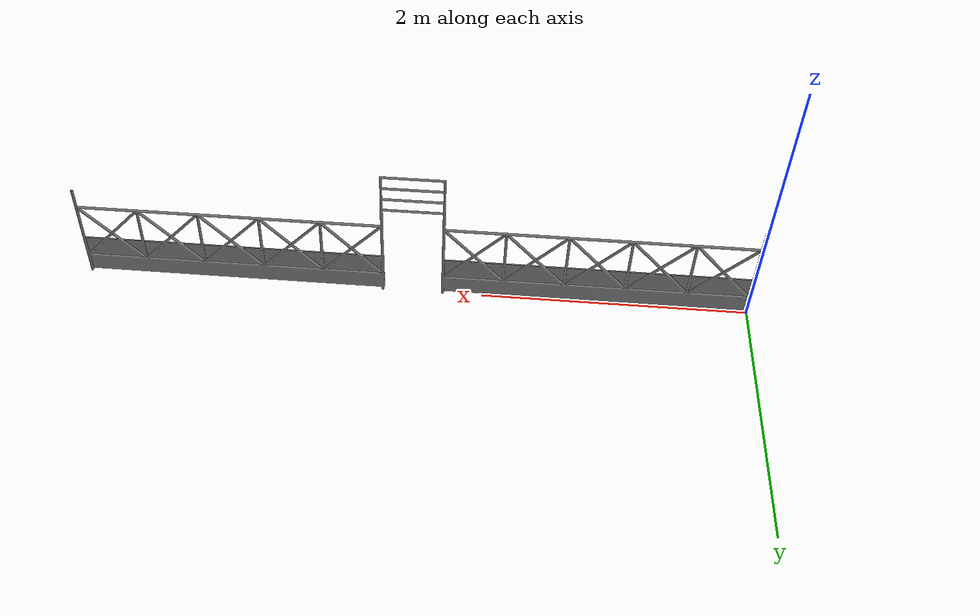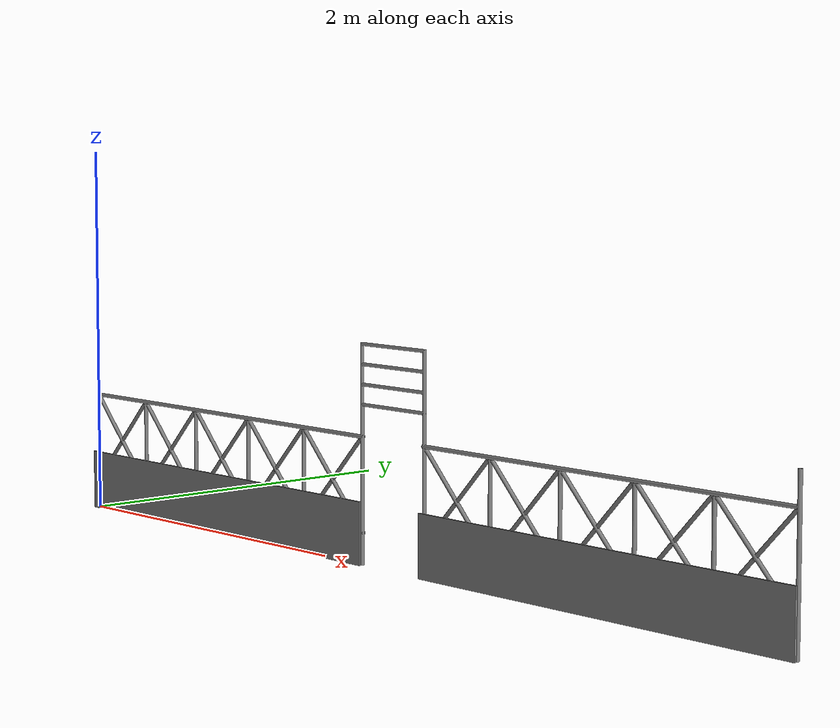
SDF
<?xml version='1.0'?>

<sdf version="1.6">
  <model name="arene_frame_with_door">
    <static>true</static>
    <link name="frame_link">
      <pose>0.0 0.0 0.0 1.57 0 0</pose>
      <visual name="frame_visual">
        <geometry>
          <mesh>
            <uri>model://arene_frame_with_door/meshes/arene_frame_with_door.STL</uri>
            <scale>0.001 0.001 0.001</scale>
          </mesh>
        </geometry>
        <material>
          <ambient>0.5 0.5 0.5 1</ambient>
          <diffuse>0.5 0.5 0.5 1</diffuse>
          <specular>0.5 0.5 0.5 1</specular>
        </material>
      </visual>
      <collision name="frame_collision">
        <pose>2.55 0.3 0.0 1.57 0 0</pose>
        <geometry>
          <box>
            <size>5.0 0.1 0.6</size>
          </box>
        </geometry>
      </collision>
      <inertial>
        <mass>25.0</mass>
        <inertia>
          <ixx>0.0</ixx>
          <ixy>0.0</ixy>
          <ixz>0.0</ixz>
          <iyy>0.0</iyy>
          <iyz>0.0</iyz>
          <izz>0.0</izz>
        </inertia>
      </inertial>
    </link>
  </model>
</sdf>
